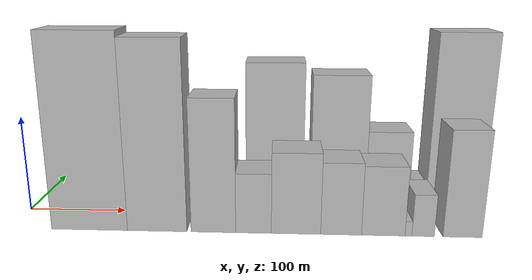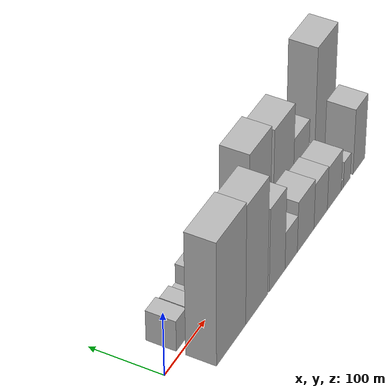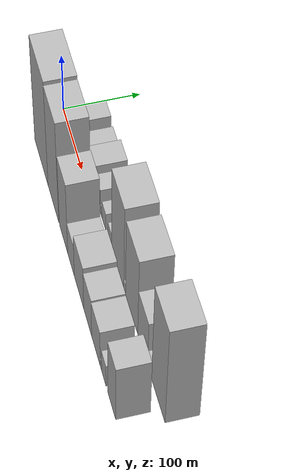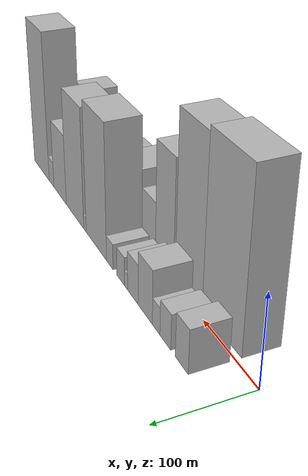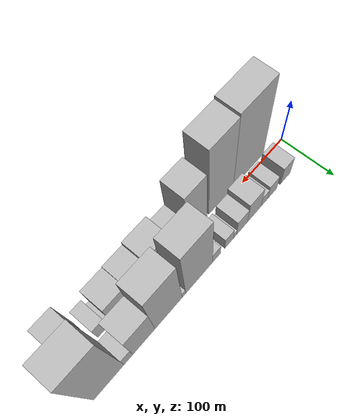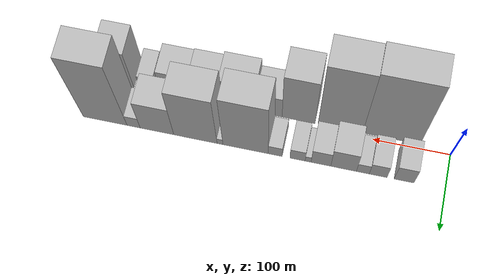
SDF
<sdf version="1.6">
 <world name="default">
  <scene>
   <sky><clouds><speed>12</speed></clouds></sky>
   <ambient>0.4 0.4 0.4 1</ambient>
   <background>0.7 0.7 0.7 1</background>
   <shadows>1</shadows>
  </scene>
  <gravity>0 0 -9.8066</gravity>
  <magnetic_field>6e-06 2.3e-05 -4.2e-05</magnetic_field>
  <physics default="0" name="default_physics" type="ode">
   <ode>
    <solver>
     <type>quick</type>
     <iters>10</iters>
     <sor>1.0</sor>
     <use_dynamic_moi_rescaling>0</use_dynamic_moi_rescaling>
    </solver>
    <constraints>
     <cfm>0</cfm>
     <erp>0.2</erp>
     <contact_max_correcting_vel>100</contact_max_correcting_vel>
     <contact_surface_layer>0.001</contact_surface_layer>
    </constraints>
   </ode>
   <max_step_size>0.004</max_step_size>
   <real_time_factor>1</real_time_factor>
   <real_time_update_rate>250</real_time_update_rate>
  </physics>
  <light name="sun" type="directional">
   <pose>0 0 10 0 0 0</pose>
   <diffuse>0.8 0.8 0.8 1</diffuse>
   <specular>0.2 0.2 0.2 1</specular>
   <attenuation>
    <range>1000</range>
    <constant>0.9</constant>
    <linear>0.01</linear>
    <quadratic>0.001</quadratic>
   </attenuation>
   <direction>-0.5 0.1 -0.9</direction>
  </light>
  <model name="building_1">
   <static>1</static>
   <pose>52.5794 26.0000 0 0.000000 0.000000 1.570796</pose>
   <link name="link">
    <pose>0 0 24.00 0 0 0</pose>
    <collision name="collision"><geometry><box><size>40.0000 25.1588 48.0000</size></box></geometry></collision>
    <visual name="visual">
     <cast_shadows>0</cast_shadows>
     <geometry><box><size>40.0000 25.1588 48.0000</size></box></geometry>
     <material>
      <script>
       <uri>model://HANNAS_wall/materials/scripts</uri>
       <uri>model://HANNAS_wall/materials/textures</uri>
       <name>vrc/HANNAS_wall</name>
      </script>
     </material>
    </visual>
   </link>
  </model>
  <model name="building_2">
   <static>1</static>
   <pose>85.4771 26.0000 0 0.000000 0.000000 1.570796</pose>
   <link name="link">
    <pose>0 0 19.50 0 0 0</pose>
    <collision name="collision"><geometry><box><size>40.0000 22.6365 39.0000</size></box></geometry></collision>
    <visual name="visual">
     <cast_shadows>0</cast_shadows>
     <geometry><box><size>40.0000 22.6365 39.0000</size></box></geometry>
     <material>
      <script>
       <uri>model://HANNAS_wall/materials/scripts</uri>
       <uri>model://HANNAS_wall/materials/textures</uri>
       <name>vrc/HANNAS_wall</name>
      </script>
     </material>
    </visual>
   </link>
  </model>
  <model name="building_3">
   <static>1</static>
   <pose>105.0093 26.0000 0 0.000000 0.000000 1.570796</pose>
   <link name="link">
    <pose>0 0 15.00 0 0 0</pose>
    <collision name="collision"><geometry><box><size>40.0000 16.4280 30.0000</size></box></geometry></collision>
    <visual name="visual">
     <cast_shadows>0</cast_shadows>
     <geometry><box><size>40.0000 16.4280 30.0000</size></box></geometry>
     <material>
      <script>
       <uri>model://HANNAS_wall/materials/scripts</uri>
       <uri>model://HANNAS_wall/materials/textures</uri>
       <name>vrc/HANNAS_wall</name>
      </script>
     </material>
    </visual>
   </link>
  </model>
  <model name="building_4">
   <static>1</static>
   <pose>129.6488 26.0000 0 0.000000 0.000000 1.570796</pose>
   <link name="link">
    <pose>0 0 30.00 0 0 0</pose>
    <collision name="collision"><geometry><box><size>40.0000 32.8509 60.0000</size></box></geometry></collision>
    <visual name="visual">
     <cast_shadows>0</cast_shadows>
     <geometry><box><size>40.0000 32.8509 60.0000</size></box></geometry>
     <material>
      <script>
       <uri>model://HANNAS_wall/materials/scripts</uri>
       <uri>model://HANNAS_wall/materials/textures</uri>
       <name>vrc/HANNAS_wall</name>
      </script>
     </material>
    </visual>
   </link>
  </model>
  <model name="building_5">
   <static>1</static>
   <pose>158.6816 26.0000 0 0.000000 0.000000 1.570796</pose>
   <link name="link">
    <pose>0 0 22.50 0 0 0</pose>
    <collision name="collision"><geometry><box><size>40.0000 25.2147 45.0000</size></box></geometry></collision>
    <visual name="visual">
     <cast_shadows>0</cast_shadows>
     <geometry><box><size>40.0000 25.2147 45.0000</size></box></geometry>
     <material>
      <script>
       <uri>model://HANNAS_wall/materials/scripts</uri>
       <uri>model://HANNAS_wall/materials/textures</uri>
       <name>vrc/HANNAS_wall</name>
      </script>
     </material>
    </visual>
   </link>
  </model>
  <model name="building_6">
   <static>1</static>
   <pose>175.1141 26.0000 0 0.000000 0.000000 1.570796</pose>
   <link name="link">
    <pose>0 0 9.00 0 0 0</pose>
    <collision name="collision"><geometry><box><size>40.0000 7.6503 18.0000</size></box></geometry></collision>
    <visual name="visual">
     <cast_shadows>0</cast_shadows>
     <geometry><box><size>40.0000 7.6503 18.0000</size></box></geometry>
     <material>
      <script>
       <uri>model://HANNAS_wall/materials/scripts</uri>
       <uri>model://HANNAS_wall/materials/textures</uri>
       <name>vrc/HANNAS_wall</name>
      </script>
     </material>
    </visual>
   </link>
  </model>
  <model name="building_7">
   <static>1</static>
   <pose>188.7531 26.0000 0 0.000000 0.000000 1.570796</pose>
   <link name="link">
    <pose>0 0 16.50 0 0 0</pose>
    <collision name="collision"><geometry><box><size>40.0000 19.6277 33.0000</size></box></geometry></collision>
    <visual name="visual">
     <cast_shadows>0</cast_shadows>
     <geometry><box><size>40.0000 19.6277 33.0000</size></box></geometry>
     <material>
      <script>
       <uri>model://HANNAS_wall/materials/scripts</uri>
       <uri>model://HANNAS_wall/materials/textures</uri>
       <name>vrc/HANNAS_wall</name>
      </script>
     </material>
    </visual>
   </link>
  </model>
  <model name="building_8">
   <static>1</static>
   <pose>217.5417 26.0000 0 0.000000 0.000000 1.570796</pose>
   <link name="link">
    <pose>0 0 15.00 0 0 0</pose>
    <collision name="collision"><geometry><box><size>40.0000 17.9495 30.0000</size></box></geometry></collision>
    <visual name="visual">
     <cast_shadows>0</cast_shadows>
     <geometry><box><size>40.0000 17.9495 30.0000</size></box></geometry>
     <material>
      <script>
       <uri>model://HANNAS_wall/materials/scripts</uri>
       <uri>model://HANNAS_wall/materials/textures</uri>
       <name>vrc/HANNAS_wall</name>
      </script>
     </material>
    </visual>
   </link>
  </model>
  <model name="building_9">
   <static>1</static>
   <pose>255.9908 26.0000 0 0.000000 0.000000 1.570796</pose>
   <link name="link">
    <pose>0 0 78.00 0 0 0</pose>
    <collision name="collision"><geometry><box><size>40.0000 58.9488 156.0000</size></box></geometry></collision>
    <visual name="visual">
     <cast_shadows>0</cast_shadows>
     <geometry><box><size>40.0000 58.9488 156.0000</size></box></geometry>
     <material>
      <script>
       <uri>model://HANNAS_wall/materials/scripts</uri>
       <uri>model://HANNAS_wall/materials/textures</uri>
       <name>vrc/HANNAS_wall</name>
      </script>
     </material>
    </visual>
   </link>
  </model>
  <model name="building_10">
   <static>1</static>
   <pose>289.2216 26.0000 0 0.000000 0.000000 1.570796</pose>
   <link name="link">
    <pose>0 0 9.00 0 0 0</pose>
    <collision name="collision"><geometry><box><size>40.0000 7.5127 18.0000</size></box></geometry></collision>
    <visual name="visual">
     <cast_shadows>0</cast_shadows>
     <geometry><box><size>40.0000 7.5127 18.0000</size></box></geometry>
     <material>
      <script>
       <uri>model://HANNAS_wall/materials/scripts</uri>
       <uri>model://HANNAS_wall/materials/textures</uri>
       <name>vrc/HANNAS_wall</name>
      </script>
     </material>
    </visual>
   </link>
  </model>
  <model name="building_11">
   <static>1</static>
   <pose>321.3518 26.0000 0 0.000000 0.000000 1.570796</pose>
   <link name="link">
    <pose>0 0 72.00 0 0 0</pose>
    <collision name="collision"><geometry><box><size>40.0000 56.7477 144.0000</size></box></geometry></collision>
    <visual name="visual">
     <cast_shadows>0</cast_shadows>
     <geometry><box><size>40.0000 56.7477 144.0000</size></box></geometry>
     <material>
      <script>
       <uri>model://HANNAS_wall/materials/scripts</uri>
       <uri>model://HANNAS_wall/materials/textures</uri>
       <name>vrc/HANNAS_wall</name>
      </script>
     </material>
    </visual>
   </link>
  </model>
  <model name="building_12">
   <static>1</static>
   <pose>371.9009 26.0000 0 0.000000 0.000000 1.570796</pose>
   <link name="link">
    <pose>0 0 43.50 0 0 0</pose>
    <collision name="collision"><geometry><box><size>40.0000 44.3506 87.0000</size></box></geometry></collision>
    <visual name="visual">
     <cast_shadows>0</cast_shadows>
     <geometry><box><size>40.0000 44.3506 87.0000</size></box></geometry>
     <material>
      <script>
       <uri>model://HANNAS_wall/materials/scripts</uri>
       <uri>model://HANNAS_wall/materials/textures</uri>
       <name>vrc/HANNAS_wall</name>
      </script>
     </material>
    </visual>
   </link>
  </model>
  <model name="building_13">
   <static>1</static>
   <pose>402.7312 26.0000 0 0.000000 0.000000 1.570796</pose>
   <link name="link">
    <pose>0 0 16.50 0 0 0</pose>
    <collision name="collision"><geometry><box><size>40.0000 17.3100 33.0000</size></box></geometry></collision>
    <visual name="visual">
     <cast_shadows>0</cast_shadows>
     <geometry><box><size>40.0000 17.3100 33.0000</size></box></geometry>
     <material>
      <script>
       <uri>model://HANNAS_wall/materials/scripts</uri>
       <uri>model://HANNAS_wall/materials/textures</uri>
       <name>vrc/HANNAS_wall</name>
      </script>
     </material>
    </visual>
   </link>
  </model>
  <model name="building_14">
   <static>1</static>
   <pose>440.3776 26.0000 0 0.000000 0.000000 1.570796</pose>
   <link name="link">
    <pose>0 0 93.00 0 0 0</pose>
    <collision name="collision"><geometry><box><size>40.0000 57.9828 186.0000</size></box></geometry></collision>
    <visual name="visual">
     <cast_shadows>0</cast_shadows>
     <geometry><box><size>40.0000 57.9828 186.0000</size></box></geometry>
     <material>
      <script>
       <uri>model://HANNAS_wall/materials/scripts</uri>
       <uri>model://HANNAS_wall/materials/textures</uri>
       <name>vrc/HANNAS_wall</name>
      </script>
     </material>
    </visual>
   </link>
  </model>
  <model name="building_15">
   <static>1</static>
   <pose>77.2309 -26.0000 0 0.000000 0.000000 1.570796</pose>
   <link name="link">
    <pose>0 0 96.00 0 0 0</pose>
    <collision name="collision"><geometry><box><size>40.0000 74.4617 192.0000</size></box></geometry></collision>
    <visual name="visual">
     <cast_shadows>0</cast_shadows>
     <geometry><box><size>40.0000 74.4617 192.0000</size></box></geometry>
     <material>
      <script>
       <uri>model://HANNAS_wall/materials/scripts</uri>
       <uri>model://HANNAS_wall/materials/textures</uri>
       <name>vrc/HANNAS_wall</name>
      </script>
     </material>
    </visual>
   </link>
  </model>
  <model name="building_16">
   <static>1</static>
   <pose>143.4056 -26.0000 0 0.000000 0.000000 1.570796</pose>
   <link name="link">
    <pose>0 0 93.00 0 0 0</pose>
    <collision name="collision"><geometry><box><size>40.0000 57.8878 186.0000</size></box></geometry></collision>
    <visual name="visual">
     <cast_shadows>0</cast_shadows>
     <geometry><box><size>40.0000 57.8878 186.0000</size></box></geometry>
     <material>
      <script>
       <uri>model://HANNAS_wall/materials/scripts</uri>
       <uri>model://HANNAS_wall/materials/textures</uri>
       <name>vrc/HANNAS_wall</name>
      </script>
     </material>
    </visual>
   </link>
  </model>
  <model name="building_17">
   <static>1</static>
   <pose>197.8688 -26.0000 0 0.000000 0.000000 1.570796</pose>
   <link name="link">
    <pose>0 0 66.00 0 0 0</pose>
    <collision name="collision"><geometry><box><size>40.0000 43.0386 132.0000</size></box></geometry></collision>
    <visual name="visual">
     <cast_shadows>0</cast_shadows>
     <geometry><box><size>40.0000 43.0386 132.0000</size></box></geometry>
     <material>
      <script>
       <uri>model://HANNAS_wall/materials/scripts</uri>
       <uri>model://HANNAS_wall/materials/textures</uri>
       <name>vrc/HANNAS_wall</name>
      </script>
     </material>
    </visual>
   </link>
  </model>
  <model name="building_18">
   <static>1</static>
   <pose>236.4540 -26.0000 0 0.000000 0.000000 1.570796</pose>
   <link name="link">
    <pose>0 0 30.00 0 0 0</pose>
    <collision name="collision"><geometry><box><size>40.0000 34.1318 60.0000</size></box></geometry></collision>
    <visual name="visual">
     <cast_shadows>0</cast_shadows>
     <geometry><box><size>40.0000 34.1318 60.0000</size></box></geometry>
     <material>
      <script>
       <uri>model://HANNAS_wall/materials/scripts</uri>
       <uri>model://HANNAS_wall/materials/textures</uri>
       <name>vrc/HANNAS_wall</name>
      </script>
     </material>
    </visual>
   </link>
  </model>
  <model name="building_19">
   <static>1</static>
   <pose>277.0649 -26.0000 0 0.000000 0.000000 1.570796</pose>
   <link name="link">
    <pose>0 0 40.50 0 0 0</pose>
    <collision name="collision"><geometry><box><size>40.0000 47.0900 81.0000</size></box></geometry></collision>
    <visual name="visual">
     <cast_shadows>0</cast_shadows>
     <geometry><box><size>40.0000 47.0900 81.0000</size></box></geometry>
     <material>
      <script>
       <uri>model://HANNAS_wall/materials/scripts</uri>
       <uri>model://HANNAS_wall/materials/textures</uri>
       <name>vrc/HANNAS_wall</name>
      </script>
     </material>
    </visual>
   </link>
  </model>
  <model name="building_20">
   <static>1</static>
   <pose>319.9295 -26.0000 0 0.000000 0.000000 1.570796</pose>
   <link name="link">
    <pose>0 0 36.00 0 0 0</pose>
    <collision name="collision"><geometry><box><size>40.0000 38.6392 72.0000</size></box></geometry></collision>
    <visual name="visual">
     <cast_shadows>0</cast_shadows>
     <geometry><box><size>40.0000 38.6392 72.0000</size></box></geometry>
     <material>
      <script>
       <uri>model://HANNAS_wall/materials/scripts</uri>
       <uri>model://HANNAS_wall/materials/textures</uri>
       <name>vrc/HANNAS_wall</name>
      </script>
     </material>
    </visual>
   </link>
  </model>
  <model name="building_21">
   <static>1</static>
   <pose>359.7578 -26.0000 0 0.000000 0.000000 1.570796</pose>
   <link name="link">
    <pose>0 0 34.50 0 0 0</pose>
    <collision name="collision"><geometry><box><size>40.0000 41.0174 69.0000</size></box></geometry></collision>
    <visual name="visual">
     <cast_shadows>0</cast_shadows>
     <geometry><box><size>40.0000 41.0174 69.0000</size></box></geometry>
     <material>
      <script>
       <uri>model://HANNAS_wall/materials/scripts</uri>
       <uri>model://HANNAS_wall/materials/textures</uri>
       <name>vrc/HANNAS_wall</name>
      </script>
     </material>
    </visual>
   </link>
  </model>
  <model name="building_22">
   <static>1</static>
   <pose>383.4871 -26.0000 0 0.000000 0.000000 1.570796</pose>
   <link name="link">
    <pose>0 0 7.50 0 0 0</pose>
    <collision name="collision"><geometry><box><size>40.0000 6.4411 15.0000</size></box></geometry></collision>
    <visual name="visual">
     <cast_shadows>0</cast_shadows>
     <geometry><box><size>40.0000 6.4411 15.0000</size></box></geometry>
     <material>
      <script>
       <uri>model://HANNAS_wall/materials/scripts</uri>
       <uri>model://HANNAS_wall/materials/textures</uri>
       <name>vrc/HANNAS_wall</name>
      </script>
     </material>
    </visual>
   </link>
  </model>
  <model name="building_23">
   <static>1</static>
   <pose>397.2100 -26.0000 0 0.000000 0.000000 1.570796</pose>
   <link name="link">
    <pose>0 0 21.00 0 0 0</pose>
    <collision name="collision"><geometry><box><size>40.0000 21.0047 42.0000</size></box></geometry></collision>
    <visual name="visual">
     <cast_shadows>0</cast_shadows>
     <geometry><box><size>40.0000 21.0047 42.0000</size></box></geometry>
     <material>
      <script>
       <uri>model://HANNAS_wall/materials/scripts</uri>
       <uri>model://HANNAS_wall/materials/textures</uri>
       <name>vrc/HANNAS_wall</name>
      </script>
     </material>
    </visual>
   </link>
  </model>
  <model name="building_24">
   <static>1</static>
   <pose>433.9176 -26.0000 0 0.000000 0.000000 1.570796</pose>
   <link name="link">
    <pose>0 0 52.50 0 0 0</pose>
    <collision name="collision"><geometry><box><size>40.0000 36.4107 105.0000</size></box></geometry></collision>
    <visual name="visual">
     <cast_shadows>0</cast_shadows>
     <geometry><box><size>40.0000 36.4107 105.0000</size></box></geometry>
     <material>
      <script>
       <uri>model://HANNAS_wall/materials/scripts</uri>
       <uri>model://HANNAS_wall/materials/textures</uri>
       <name>vrc/HANNAS_wall</name>
      </script>
     </material>
    </visual>
   </link>
  </model>
 </world>
</sdf>
